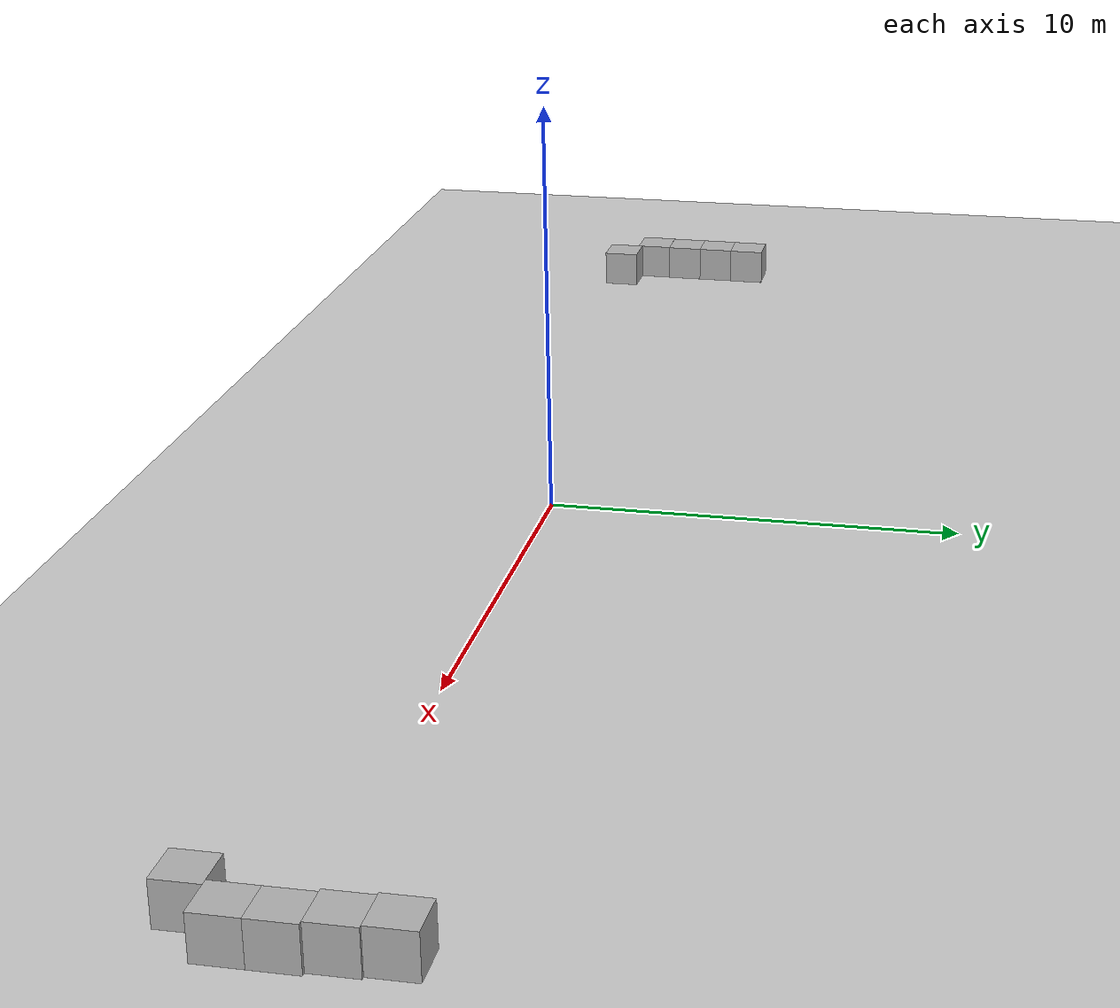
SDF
<sdf version="1.10">
 <world name="empty">
  <plugin name="gz::sim::systems::Physics" filename="gz-sim-physics-system"/>
  <plugin name="gz::sim::systems::UserCommands" filename="gz-sim-user-commands-system"/>
  <plugin name="gz::sim::systems::SceneBroadcaster" filename="gz-sim-scene-broadcaster-system"/>
  <plugin name="gz::sim::systems::Sensors" filename="gz-sim-sensors-system"/>
  <gravity>0 0 -9.8000000000000007</gravity>
  <physics type="ode">
   <max_step_size>0.001</max_step_size>
   <real_time_factor>1</real_time_factor>
   <real_time_update_rate>1000</real_time_update_rate>
  </physics>
  <scene>
   <ambient>0.400000006 0.400000006 0.400000006 1</ambient>
   <background>0.699999988 0.699999988 0.699999988 1</background>
   <shadows>true</shadows>
  </scene>
  <magnetic_field>5.5644999999999998e-06 2.2875799999999999e-05 -4.2388400000000002e-05</magnetic_field>
  <atmosphere type="adiabatic"/>
  <model name="ground_plane">
   <static>true</static>
   <link name="link">
    <collision name="collision">
     <geometry><plane><normal>0 0 1</normal><size>100 100</size></plane></geometry>
    </collision>
    <visual name="visual"><geometry><plane><normal>0 0 1</normal><size>100 100</size></plane></geometry></visual>
    <inertial>
     <mass>1</mass>
     <inertia><ixx>1</ixx><ixy>0</ixy><ixz>0</ixz><iyy>1</iyy><iyz>0</iyz><izz>1</izz></inertia>
    </inertial>
   </link>
  </model>
  <model name="box">
   <pose>-19.5 1.9473100000000001 0.51199899999999998 -8.8135499999999992e-09 6.1971900000000035e-09 -3.1485200000000015e-05</pose>
   <link name="box_link">
    <inertial>
     <inertia><ixx>0.16666</ixx><ixy>0</ixy><ixz>0</ixz><iyy>0.16666</iyy><iyz>0</iyz><izz>0.16666</izz></inertia>
     <mass>1</mass>
    </inertial>
    <collision name="box_collision"><geometry><box><size>1 1 1</size></box></geometry></collision>
    <visual name="box_visual">
     <geometry><box><size>1 1 1</size></box></geometry>
     <material>
      <ambient>0.300000012 0.300000012 0.300000012 1</ambient>
      <diffuse>0.699999988 0.699999988 0.699999988 1</diffuse>
      <specular>1 1 1 1</specular>
     </material>
    </visual>
   </link>
   <static>false</static>
  </model>
  <model name="box_0">
   <pose>-19.515799999999999 0.94730599999999998 0.51199899999999998 -1.6467000000000001e-08 9.6895799999999995e-09 -3.1350600000000011e-05</pose>
   <link name="box_link">
    <inertial>
     <inertia><ixx>0.16666</ixx><ixy>0</ixy><ixz>0</ixz><iyy>0.16666</iyy><iyz>0</iyz><izz>0.16666</izz></inertia>
     <mass>1</mass>
    </inertial>
    <collision name="box_collision"><geometry><box><size>1 1 1</size></box></geometry></collision>
    <visual name="box_visual">
     <geometry><box><size>1 1 1</size></box></geometry>
     <material>
      <ambient>0.300000012 0.300000012 0.300000012 1</ambient>
      <diffuse>0.699999988 0.699999988 0.699999988 1</diffuse>
      <specular>1 1 1 1</specular>
     </material>
    </visual>
   </link>
   <static>false</static>
  </model>
  <model name="box_1">
   <pose>-19.520700000000001 -0.052693200000000003 0.51200000000000001 8.5784000000000026e-09 7.9380199999999998e-07 -3.1338799999999999e-05</pose>
   <link name="box_link">
    <inertial>
     <inertia><ixx>0.16666</ixx><ixy>0</ixy><ixz>0</ixz><iyy>0.16666</iyy><iyz>0</iyz><izz>0.16666</izz></inertia>
     <mass>1</mass>
    </inertial>
    <collision name="box_collision"><geometry><box><size>1 1 1</size></box></geometry></collision>
    <visual name="box_visual">
     <geometry><box><size>1 1 1</size></box></geometry>
     <material>
      <ambient>0.300000012 0.300000012 0.300000012 1</ambient>
      <diffuse>0.699999988 0.699999988 0.699999988 1</diffuse>
      <specular>1 1 1 1</specular>
     </material>
    </visual>
   </link>
   <static>false</static>
  </model>
  <model name="box_2">
   <pose>-19.546399999999998 -1.0551600000000001 0.51199899999999998 1.4497300000000003e-09 1.23662e-09 -0.0052223399999999998</pose>
   <link name="box_link">
    <inertial>
     <inertia><ixx>0.16666</ixx><ixy>0</ixy><ixz>0</ixz><iyy>0.16666</iyy><iyz>0</iyz><izz>0.16666</izz></inertia>
     <mass>1</mass>
    </inertial>
    <collision name="box_collision"><geometry><box><size>1 1 1</size></box></geometry></collision>
    <visual name="box_visual">
     <geometry><box><size>1 1 1</size></box></geometry>
     <material>
      <ambient>0.300000012 0.300000012 0.300000012 1</ambient>
      <diffuse>0.699999988 0.699999988 0.699999988 1</diffuse>
      <specular>1 1 1 1</specular>
     </material>
    </visual>
   </link>
   <static>false</static>
  </model>
  <model name="box_3">
   <pose>-18.549800000000001 -1.9430099999999999 0.51199899999999998 2.9731600000000009e-09 4.7791099999999996e-09 -0.0028135600000000001</pose>
   <link name="box_link">
    <inertial>
     <inertia><ixx>0.16666</ixx><ixy>0</ixy><ixz>0</ixz><iyy>0.16666</iyy><iyz>0</iyz><izz>0.16666</izz></inertia>
     <mass>1</mass>
    </inertial>
    <collision name="box_collision"><geometry><box><size>1 1 1</size></box></geometry></collision>
    <visual name="box_visual">
     <geometry><box><size>1 1 1</size></box></geometry>
     <material>
      <ambient>0.300000012 0.300000012 0.300000012 1</ambient>
      <diffuse>0.699999988 0.699999988 0.699999988 1</diffuse>
      <specular>1 1 1 1</specular>
     </material>
    </visual>
   </link>
   <static>false</static>
  </model>
  <model name="box_4">
   <pose>19.499500000000001 2 0.51199899999999998 2.5288899999999994e-08 5.2412500000000027e-08 -4.2868100000000003e-08</pose>
   <link name="box_link">
    <inertial>
     <inertia><ixx>0.16666</ixx><ixy>0</ixy><ixz>0</ixz><iyy>0.16666</iyy><iyz>0</iyz><izz>0.16666</izz></inertia>
     <mass>1</mass>
    </inertial>
    <collision name="box_collision"><geometry><box><size>1 1 1</size></box></geometry></collision>
    <visual name="box_visual">
     <geometry><box><size>1 1 1</size></box></geometry>
     <material>
      <ambient>0.300000012 0.300000012 0.300000012 1</ambient>
      <diffuse>0.699999988 0.699999988 0.699999988 1</diffuse>
      <specular>1 1 1 1</specular>
     </material>
    </visual>
   </link>
   <static>false</static>
  </model>
  <model name="box_5">
   <pose>19.565200000000001 1 0.51199899999999998 1.3307799999999997e-08 -1.2669399999999999e-06 -2.0233399999999994e-07</pose>
   <link name="box_link">
    <inertial>
     <inertia><ixx>0.16666</ixx><ixy>0</ixy><ixz>0</ixz><iyy>0.16666</iyy><iyz>0</iyz><izz>0.16666</izz></inertia>
     <mass>1</mass>
    </inertial>
    <collision name="box_collision"><geometry><box><size>1 1 1</size></box></geometry></collision>
    <visual name="box_visual">
     <geometry><box><size>1 1 1</size></box></geometry>
     <material>
      <ambient>0.300000012 0.300000012 0.300000012 1</ambient>
      <diffuse>0.699999988 0.699999988 0.699999988 1</diffuse>
      <specular>1 1 1 1</specular>
     </material>
    </visual>
   </link>
   <static>false</static>
  </model>
  <model name="box_6">
   <pose>19.650038156967184 9.1502506408880599e-10 0.51199999115743422 -4.3649698335283261e-10 1.3537112490739224e-09 -2.8410550807932594e-06</pose>
   <link name="box_link">
    <inertial>
     <inertia><ixx>0.16666</ixx><ixy>0</ixy><ixz>0</ixz><iyy>0.16666</iyy><iyz>0</iyz><izz>0.16666</izz></inertia>
     <mass>1</mass>
    </inertial>
    <collision name="box_collision"><geometry><box><size>1 1 1</size></box></geometry></collision>
    <visual name="box_visual">
     <geometry><box><size>1 1 1</size></box></geometry>
     <material>
      <ambient>0.300000012 0.300000012 0.300000012 1</ambient>
      <diffuse>0.699999988 0.699999988 0.699999988 1</diffuse>
      <specular>1 1 1 1</specular>
     </material>
    </visual>
   </link>
   <static>false</static>
  </model>
  <model name="box_7">
   <pose>19.649570378782364 -0.99999982710542901 0.51199942368505547 3.6845934028607266e-09 -3.739279345425851e-09 -2.3549099845069932e-06</pose>
   <link name="box_link">
    <inertial>
     <inertia><ixx>0.16666</ixx><ixy>0</ixy><ixz>0</ixz><iyy>0.16666</iyy><iyz>0</iyz><izz>0.16666</izz></inertia>
     <mass>1</mass>
    </inertial>
    <collision name="box_collision"><geometry><box><size>1 1 1</size></box></geometry></collision>
    <visual name="box_visual">
     <geometry><box><size>1 1 1</size></box></geometry>
     <material>
      <ambient>0.300000012 0.300000012 0.300000012 1</ambient>
      <diffuse>0.699999988 0.699999988 0.699999988 1</diffuse>
      <specular>1 1 1 1</specular>
     </material>
    </visual>
   </link>
   <static>false</static>
  </model>
  <model name="box_8">
   <pose>18.801682646377451 -1.9999977392921238 0.5119994248755787 -7.5411686581831054e-09 4.7906652709833112e-11 -2.2910367704154696e-06</pose>
   <link name="box_link">
    <inertial>
     <inertia><ixx>0.16666</ixx><ixy>0</ixy><ixz>0</ixz><iyy>0.16666</iyy><iyz>0</iyz><izz>0.16666</izz></inertia>
     <mass>1</mass>
    </inertial>
    <collision name="box_collision"><geometry><box><size>1 1 1</size></box></geometry></collision>
    <visual name="box_visual">
     <geometry><box><size>1 1 1</size></box></geometry>
     <material>
      <ambient>0.300000012 0.300000012 0.300000012 1</ambient>
      <diffuse>0.699999988 0.699999988 0.699999988 1</diffuse>
      <specular>1 1 1 1</specular>
     </material>
    </visual>
   </link>
   <static>false</static>
  </model>
  <light name="sun" type="directional">
   <pose>0 0 15 0 0 0</pose>
   <intensity>1</intensity>
   <direction>-0.5 0.10000000000000001 -0.90000000000000002</direction>
   <diffuse>0.800000012 0.800000012 0.800000012 1</diffuse>
   <specular>0.200000003 0.200000003 0.200000003 1</specular>
   <attenuation><range>10</range><linear>1</linear><constant>1</constant><quadratic>0</quadratic></attenuation>
   <spot><inner_angle>0</inner_angle><outer_angle>0</outer_angle><falloff>0</falloff></spot>
  </light>
 </world>
</sdf>
